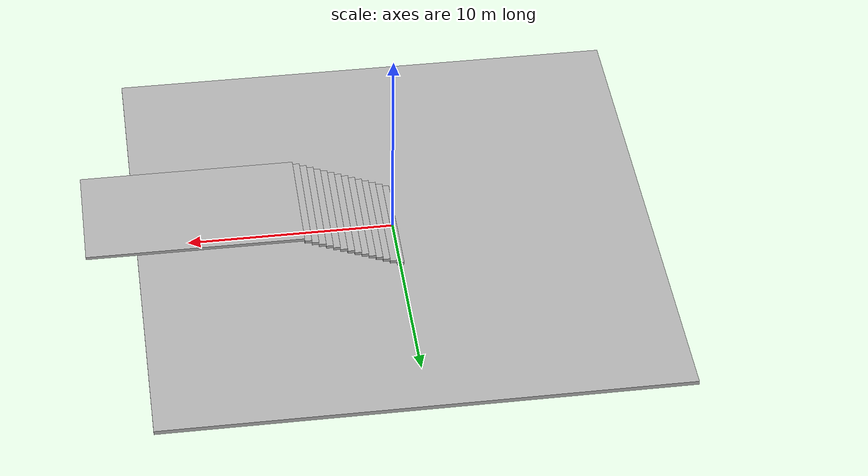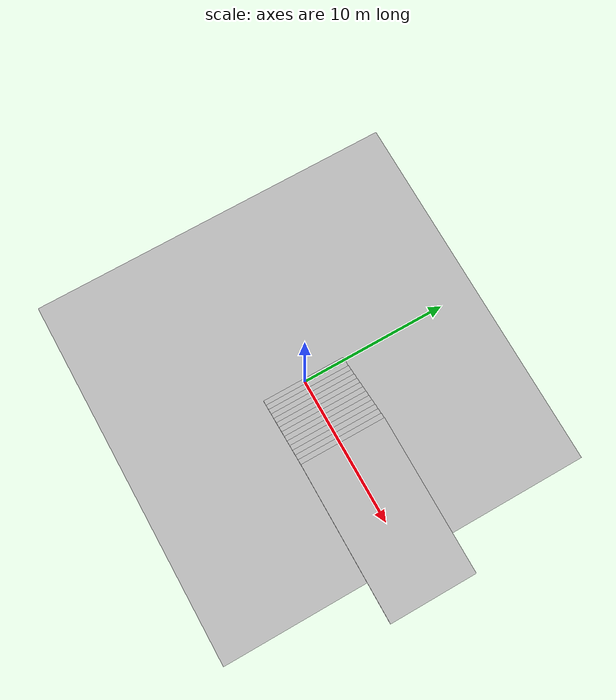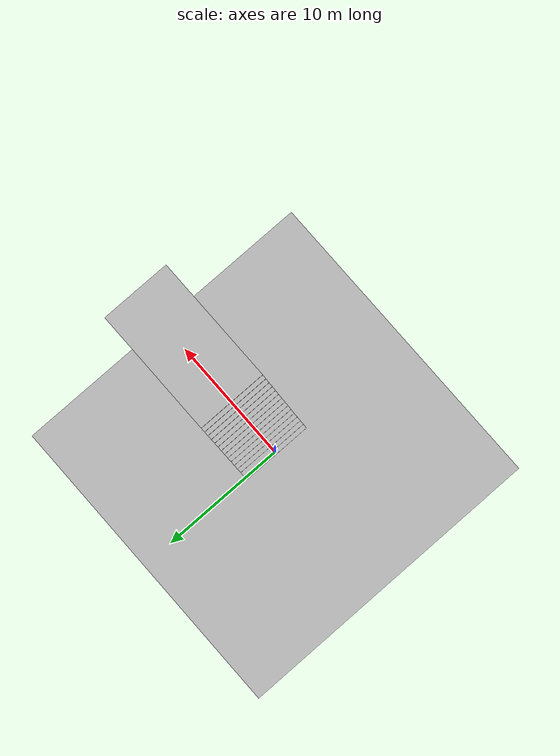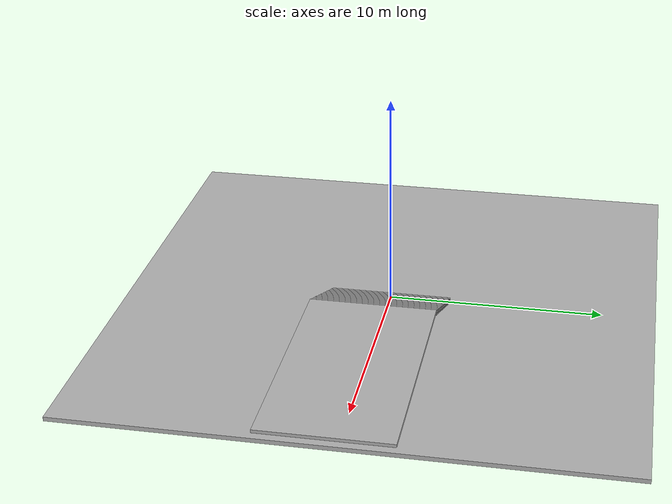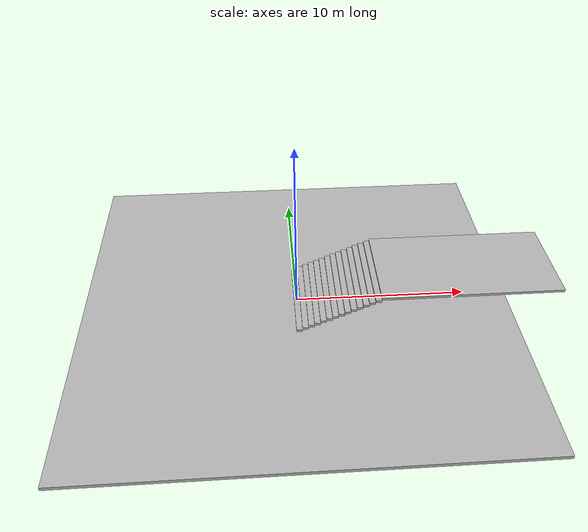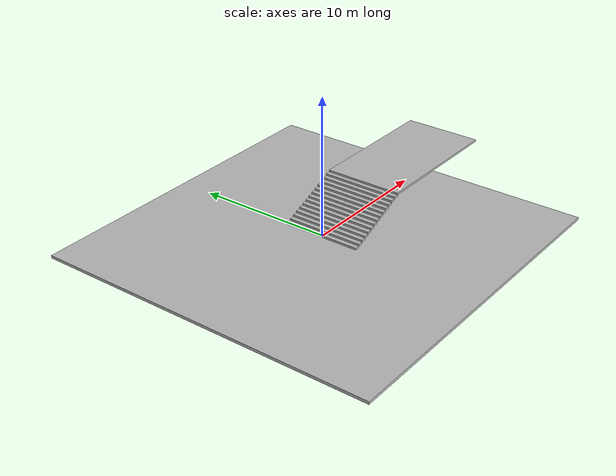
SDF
<sdf version="1.6">
  <world name="generated_world">
    <model name="floorDONT_VISUALIZE">
      <static>true</static>
      <pose>0 0 -0.1 0 0 0</pose>
      <link name="link">
        <collision name="collision">
          <geometry>
            <box>
              <size>25 25 0.2</size>
            </box>
          </geometry>
        </collision>
        <visual name="visual">
          <geometry>
            <box>
              <size>25 25 0.2</size>
            </box>
          </geometry>
        </visual>
      </link>
    </model>
    <model name="s0">
      <static>true</static>
      <pose>0.0 0 0.0725 0 0 0</pose>
      <link name="link">
        <collision name="collision">
          <geometry>
            <box>
              <size>0.34 5.7 0.145</size>
            </box>
          </geometry>
        </collision>
        <visual name="visual">
          <geometry>
            <box>
              <size>0.34 5.7 0.145</size>
            </box>
          </geometry>
        </visual>
      </link>
    </model>
    <model name="s1">
      <static>true</static>
      <pose>0.34 0 0.21749999999999997 0 0 0</pose>
      <link name="link">
        <collision name="collision">
          <geometry>
            <box>
              <size>0.34 5.7 0.145</size>
            </box>
          </geometry>
        </collision>
        <visual name="visual">
          <geometry>
            <box>
              <size>0.34 5.7 0.145</size>
            </box>
          </geometry>
        </visual>
      </link>
    </model>
    <model name="s2">
      <static>true</static>
      <pose>0.68 0 0.3625 0 0 0</pose>
      <link name="link">
        <collision name="collision">
          <geometry>
            <box>
              <size>0.34 5.7 0.145</size>
            </box>
          </geometry>
        </collision>
        <visual name="visual">
          <geometry>
            <box>
              <size>0.34 5.7 0.145</size>
            </box>
          </geometry>
        </visual>
      </link>
    </model>
    <model name="s3">
      <static>true</static>
      <pose>1.02 0 0.5075 0 0 0</pose>
      <link name="link">
        <collision name="collision">
          <geometry>
            <box>
              <size>0.34 5.7 0.145</size>
            </box>
          </geometry>
        </collision>
        <visual name="visual">
          <geometry>
            <box>
              <size>0.34 5.7 0.145</size>
            </box>
          </geometry>
        </visual>
      </link>
    </model>
    <model name="s4">
      <static>true</static>
      <pose>1.36 0 0.6525 0 0 0</pose>
      <link name="link">
        <collision name="collision">
          <geometry>
            <box>
              <size>0.34 5.7 0.145</size>
            </box>
          </geometry>
        </collision>
        <visual name="visual">
          <geometry>
            <box>
              <size>0.34 5.7 0.145</size>
            </box>
          </geometry>
        </visual>
      </link>
    </model>
    <model name="s5">
      <static>true</static>
      <pose>1.7000000000000002 0 0.7975 0 0 0</pose>
      <link name="link">
        <collision name="collision">
          <geometry>
            <box>
              <size>0.34 5.7 0.145</size>
            </box>
          </geometry>
        </collision>
        <visual name="visual">
          <geometry>
            <box>
              <size>0.34 5.7 0.145</size>
            </box>
          </geometry>
        </visual>
      </link>
    </model>
    <model name="s6">
      <static>true</static>
      <pose>2.04 0 0.9424999999999999 0 0 0</pose>
      <link name="link">
        <collision name="collision">
          <geometry>
            <box>
              <size>0.34 5.7 0.145</size>
            </box>
          </geometry>
        </collision>
        <visual name="visual">
          <geometry>
            <box>
              <size>0.34 5.7 0.145</size>
            </box>
          </geometry>
        </visual>
      </link>
    </model>
    <model name="s7">
      <static>true</static>
      <pose>2.3800000000000003 0 1.0875 0 0 0</pose>
      <link name="link">
        <collision name="collision">
          <geometry>
            <box>
              <size>0.34 5.7 0.145</size>
            </box>
          </geometry>
        </collision>
        <visual name="visual">
          <geometry>
            <box>
              <size>0.34 5.7 0.145</size>
            </box>
          </geometry>
        </visual>
      </link>
    </model>
    <model name="s8">
      <static>true</static>
      <pose>2.72 0 1.2325 0 0 0</pose>
      <link name="link">
        <collision name="collision">
          <geometry>
            <box>
              <size>0.34 5.7 0.145</size>
            </box>
          </geometry>
        </collision>
        <visual name="visual">
          <geometry>
            <box>
              <size>0.34 5.7 0.145</size>
            </box>
          </geometry>
        </visual>
      </link>
    </model>
    <model name="s9">
      <static>true</static>
      <pose>3.06 0 1.3775 0 0 0</pose>
      <link name="link">
        <collision name="collision">
          <geometry>
            <box>
              <size>0.34 5.7 0.145</size>
            </box>
          </geometry>
        </collision>
        <visual name="visual">
          <geometry>
            <box>
              <size>0.34 5.7 0.145</size>
            </box>
          </geometry>
        </visual>
      </link>
    </model>
    <model name="s10">
      <static>true</static>
      <pose>3.4000000000000004 0 1.5225 0 0 0</pose>
      <link name="link">
        <collision name="collision">
          <geometry>
            <box>
              <size>0.34 5.7 0.145</size>
            </box>
          </geometry>
        </collision>
        <visual name="visual">
          <geometry>
            <box>
              <size>0.34 5.7 0.145</size>
            </box>
          </geometry>
        </visual>
      </link>
    </model>
    <model name="s11">
      <static>true</static>
      <pose>3.74 0 1.6675 0 0 0</pose>
      <link name="link">
        <collision name="collision">
          <geometry>
            <box>
              <size>0.34 5.7 0.145</size>
            </box>
          </geometry>
        </collision>
        <visual name="visual">
          <geometry>
            <box>
              <size>0.34 5.7 0.145</size>
            </box>
          </geometry>
        </visual>
      </link>
    </model>
    <model name="s12">
      <static>true</static>
      <pose>4.08 0 1.8124999999999998 0 0 0</pose>
      <link name="link">
        <collision name="collision">
          <geometry>
            <box>
              <size>0.34 5.7 0.145</size>
            </box>
          </geometry>
        </collision>
        <visual name="visual">
          <geometry>
            <box>
              <size>0.34 5.7 0.145</size>
            </box>
          </geometry>
        </visual>
      </link>
    </model>
    <model name="s13">
      <static>true</static>
      <pose>4.42 0 1.9574999999999998 0 0 0</pose>
      <link name="link">
        <collision name="collision">
          <geometry>
            <box>
              <size>0.34 5.7 0.145</size>
            </box>
          </geometry>
        </collision>
        <visual name="visual">
          <geometry>
            <box>
              <size>0.34 5.7 0.145</size>
            </box>
          </geometry>
        </visual>
      </link>
    </model>
    <model name="s14">
      <static>true</static>
      <pose>9.760000000000002 0 2.1024999999999996 0 0 0</pose>
      <link name="link">
        <collision name="collision">
          <geometry>
            <box>
              <size>10.34 5.7 0.145</size>
            </box>
          </geometry>
        </collision>
        <visual name="visual">
          <geometry>
            <box>
              <size>10.34 5.7 0.145</size>
            </box>
          </geometry>
        </visual>
      </link>
    </model>
  </world>
</sdf>
